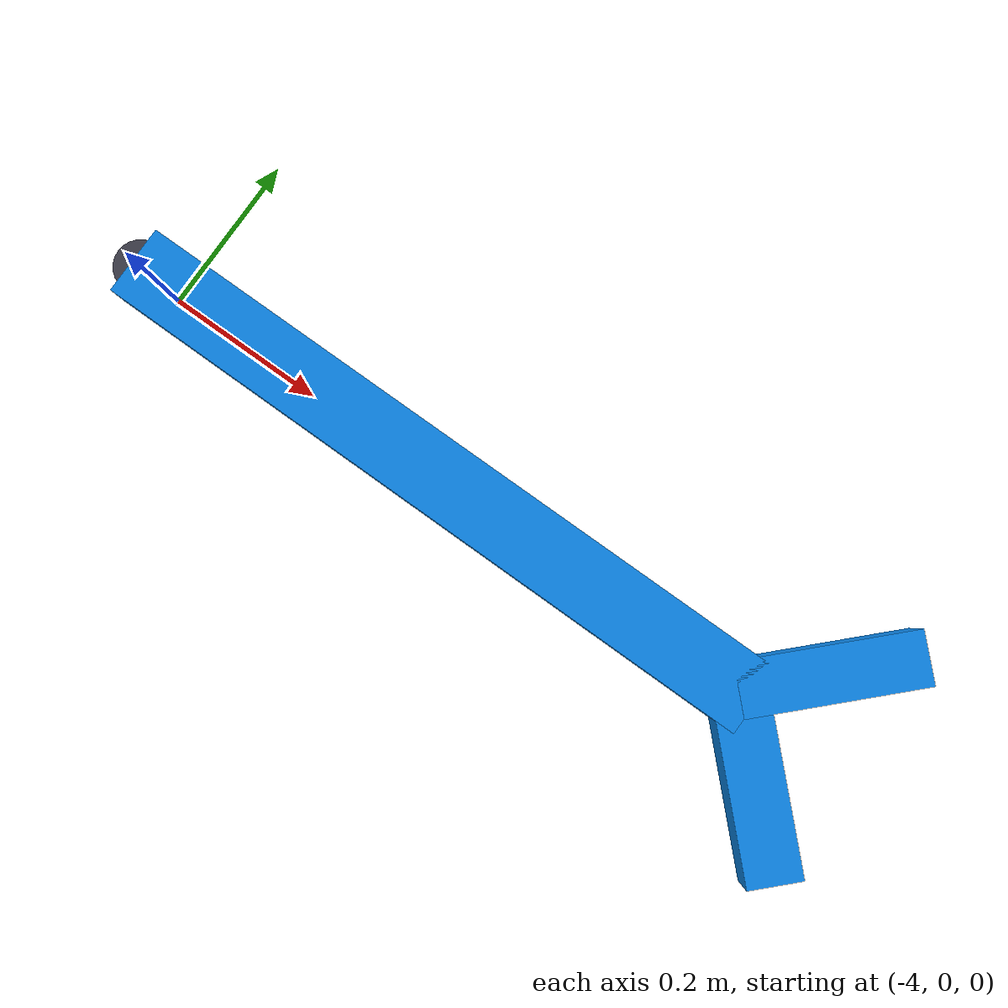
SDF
<sdf version="1.6">
 <world name="default">
  <model name="arrow_marker">
   <static>true</static>
   <pose>-4 0 0 0 0 0</pose>
   <link name="arrow">
    <collision name="stand_collision">
     <geometry><cylinder><radius>0.03</radius><length>0.15</length></cylinder></geometry>
     <pose>0 0 0.075 0 0 0</pose>
    </collision>
    <visual name="stand_visual">
     <geometry><cylinder><radius>0.03</radius><length>0.15</length></cylinder></geometry>
     <pose>0 0 0.075 0 0 0</pose>
     <material><ambient>0.2 0.2 0.25 1</ambient><diffuse>0.25 0.25 0.3 1</diffuse></material>
    </visual>
    <visual name="arrow_shaft">
     <geometry><box><size>0.8 0.08 0.05</size></box></geometry>
     <pose>0.4 0 0.15 0 0 0</pose>
     <material><ambient>0 0.45 0.8 1</ambient><diffuse>0.05 0.55 0.95 1</diffuse></material>
    </visual>
    <visual name="arrow_head_left">
     <geometry><box><size>0.2 0.06 0.05</size></box></geometry>
     <pose>0.85 0.07 0.15 0 0 0.785398</pose>
     <material><ambient>0 0.45 0.8 1</ambient><diffuse>0.05 0.55 0.95 1</diffuse></material>
    </visual>
    <visual name="arrow_head_right">
     <geometry><box><size>0.2 0.06 0.05</size></box></geometry>
     <pose>0.85 -0.07 0.15 0 0 -0.785398</pose>
     <material><ambient>0 0.45 0.8 1</ambient><diffuse>0.05 0.55 0.95 1</diffuse></material>
    </visual>
   </link>
  </model>
 </world>
</sdf>
